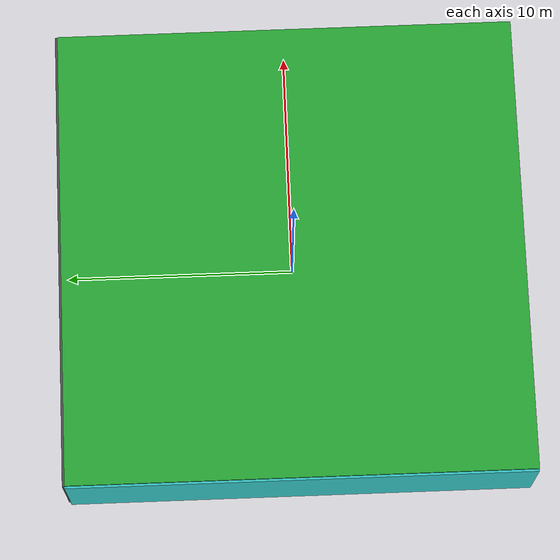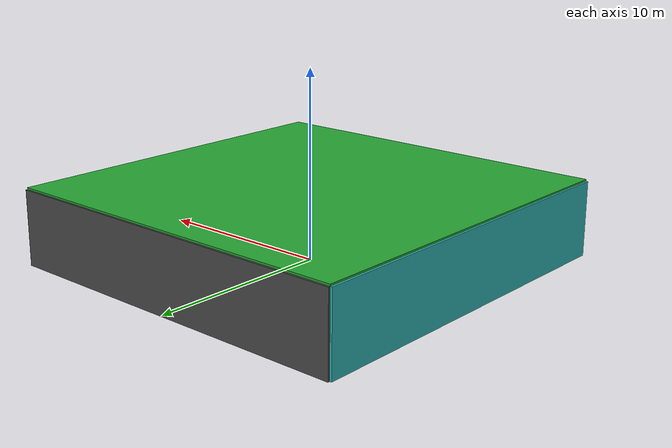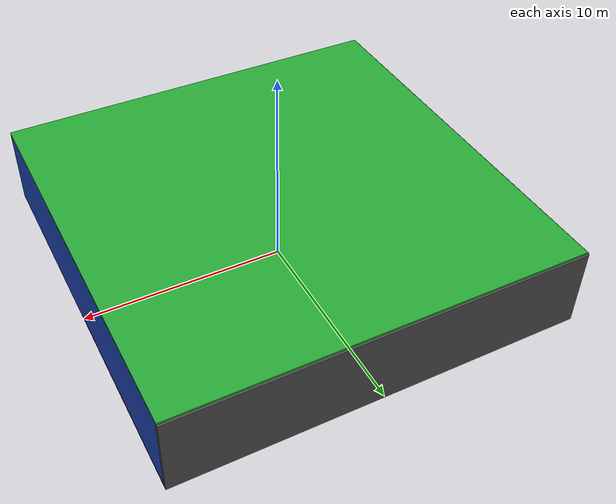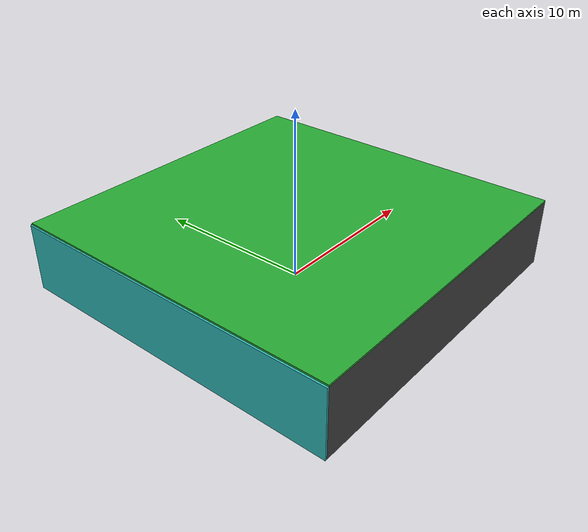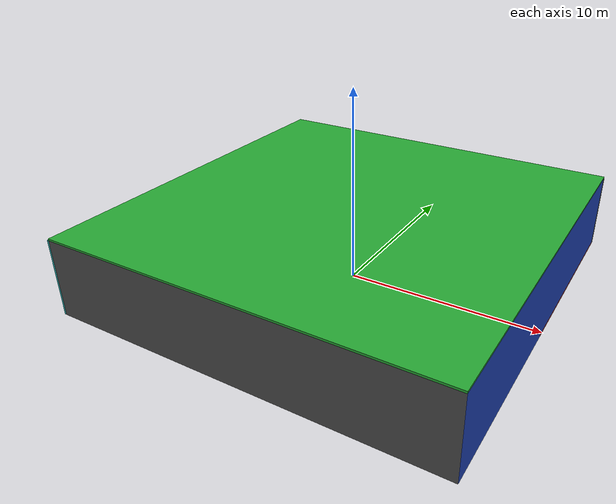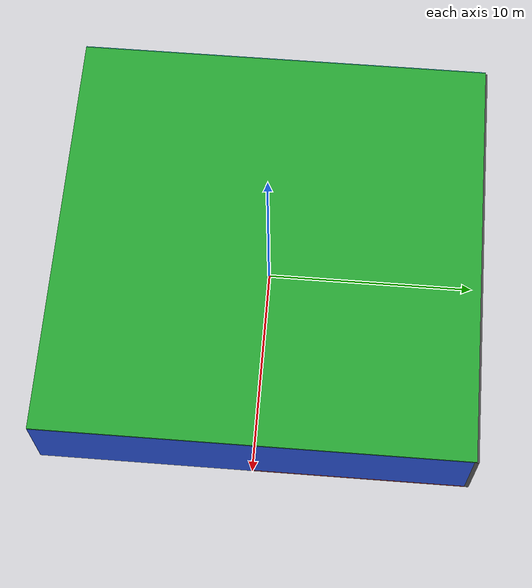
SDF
<sdf version="1.4">
 <world name="default">
  <physics type="ode">
   <max_step_size>0.001</max_step_size>
   <real_time_factor>1</real_time_factor>
   <real_time_update_rate>1000</real_time_update_rate>
   <gravity>0 0 -9.8</gravity>
  </physics>
  <scene><ambient>0.4 0.4 0.4 1</ambient><background>0.7 0.7 0.7 1</background><shadows>1</shadows></scene>
  <model name="Surrounding">
   <static>1</static>
   <link name="Ceiling">
    <collision name="Ceiling_Collision"><geometry><box><size>20 20 0.1</size></box></geometry></collision>
    <visual name="Ceiling_Visual">
     <geometry><box><size>20 20 0.1</size></box></geometry>
     <material>
      <script><uri>file://media/materials/scripts/gazebo.material</uri><name>Gazebo/Green</name></script>
     </material>
    </visual>
    <pose>0 0 4.05 0 0 0</pose>
   </link>
   <link name="Wall_South">
    <collision name="Wall_South_Collision">
     <geometry><box><size>20 0 4</size></box></geometry>
     <pose>0 0 2 0 -0 0</pose>
    </collision>
    <visual name="Wall_South_Visual">
     <pose>0 0 2 0 -0 0</pose>
     <geometry><box><size>20 0 4</size></box></geometry>
     <material>
      <script><uri>file://media/materials/scripts/gazebo.material</uri><name>Gazebo/Road</name></script>
     </material>
    </visual>
    <velocity_decay><linear>0</linear><angular>0</angular></velocity_decay>
    <pose>0 -10 0 0 -0 0</pose>
   </link>
   <link name="Wall_East">
    <collision name="Wall_21_Collision">
     <geometry><box><size>20 0 4</size></box></geometry>
     <pose>0 0 2 0 -0 0</pose>
    </collision>
    <visual name="Wall_21_Visual">
     <pose>0 0 2 0 -0 0</pose>
     <geometry><box><size>20 0 4</size></box></geometry>
     <material>
      <script><uri>file://media/materials/scripts/gazebo.material</uri><name>Gazebo/BlueGlow</name></script>
     </material>
    </visual>
    <velocity_decay><linear>0</linear><angular>0</angular></velocity_decay>
    <pose>10 0 0 0 -0 1.5708</pose>
   </link>
   <link name="Wall_North">
    <collision name="Wall_22_Collision">
     <geometry><box><size>20 0.2 4</size></box></geometry>
     <pose>0 0 2 0 -0 0</pose>
    </collision>
    <visual name="Wall_22_Visual">
     <pose>0 0 2 0 -0 0</pose>
     <geometry><box><size>20 0.2 4</size></box></geometry>
     <material>
      <script><uri>file://media/materials/scripts/gazebo.material</uri><name>Gazebo/Road</name></script>
     </material>
    </visual>
    <velocity_decay><linear>0</linear><angular>0</angular></velocity_decay>
    <pose>0 10 0 0 -0 0</pose>
   </link>
   <link name="Wall_West">
    <collision name="Wall_23_Collision">
     <geometry><box><size>20 0.2 4</size></box></geometry>
     <pose>0 0 2 0 -0 0</pose>
    </collision>
    <visual name="Wall_23_Visual">
     <pose>0 0 2 0 -0 0</pose>
     <geometry><box><size>20 0.2 4</size></box></geometry>
     <material>
      <script><uri>file://media/materials/scripts/gazebo.material</uri><name>Gazebo/Turquoise</name></script>
     </material>
    </visual>
    <velocity_decay><linear>0</linear><angular>0</angular></velocity_decay>
    <pose>-10 0 0 0 0 -1.5708</pose>
   </link>
   <link name="Ground_link">
    <collision name="collision">
     <pose>0 0 .05 0 -0 0</pose>
     <geometry><box><size>20 20 0.1</size></box></geometry>
    </collision>
    <visual name="visual">
     <pose>0 0 .05 0 -0 0</pose>
     <geometry><box><size>20 20 0.1</size></box></geometry>
     <material>
      <script><uri>file://media/materials/scripts/gazebo.material</uri><name>Gazebo/RedGlow</name></script>
     </material>
    </visual>
   </link>
   <static>1</static>
  </model>
  <spherical_coordinates>
   <surface_model>EARTH_WGS84</surface_model>
   <latitude_deg>0</latitude_deg>
   <longitude_deg>0</longitude_deg>
   <elevation>0</elevation>
   <heading_deg>0</heading_deg>
  </spherical_coordinates>
  <light name="lightball_0" type="diffuse">
   <diffuse>0.8 0.8 0.8 1</diffuse>
   <specular>0.2 0.2 0.2 1</specular>
   <attenuation>
    <range>100</range>
    <constant>0.7</constant>
    <linear>0.01</linear>
    <quadratic>0.001</quadratic>
   </attenuation>
   <direction>-0.5 0.1 -0.9</direction>
   <pose>-1.76778964395 -2.11867338882 3.62539254745 0 0 0</pose>
  </light>
  <light name="lightball_1" type="diffuse">
   <diffuse>0.8 0.8 0.8 1</diffuse>
   <specular>0.2 0.2 0.2 1</specular>
   <attenuation>
    <range>100</range>
    <constant>0.7</constant>
    <linear>0.01</linear>
    <quadratic>0.001</quadratic>
   </attenuation>
   <direction>-0.5 0.1 -0.9</direction>
   <pose>-1.13019996039 -8.11459433249 1.0115950858 0 0 0</pose>
  </light>
  <light name="lightball_2" type="diffuse">
   <diffuse>0.8 0.8 0.8 1</diffuse>
   <specular>0.2 0.2 0.2 1</specular>
   <attenuation>
    <range>100</range>
    <constant>0.7</constant>
    <linear>0.01</linear>
    <quadratic>0.001</quadratic>
   </attenuation>
   <direction>-0.5 0.1 -0.9</direction>
   <pose>1.09092730737 -3.82649897932 1.8907854477 0 0 0</pose>
  </light>
  <light name="lightball_3" type="diffuse">
   <diffuse>0.8 0.8 0.8 1</diffuse>
   <specular>0.2 0.2 0.2 1</specular>
   <attenuation>
    <range>100</range>
    <constant>0.7</constant>
    <linear>0.01</linear>
    <quadratic>0.001</quadratic>
   </attenuation>
   <direction>-0.5 0.1 -0.9</direction>
   <pose>-2.53705586453 -6.06411592707 2.41516283651 0 0 0</pose>
  </light>
  <light name="lightball_4" type="diffuse">
   <diffuse>0.8 0.8 0.8 1</diffuse>
   <specular>0.2 0.2 0.2 1</specular>
   <attenuation>
    <range>100</range>
    <constant>0.7</constant>
    <linear>0.01</linear>
    <quadratic>0.001</quadratic>
   </attenuation>
   <direction>-0.5 0.1 -0.9</direction>
   <pose>0.658565692168 -2.02681514788 2.09726927577 0 0 0</pose>
  </light>
  <light name="lightball_5" type="diffuse">
   <diffuse>0.8 0.8 0.8 1</diffuse>
   <specular>0.2 0.2 0.2 1</specular>
   <attenuation>
    <range>100</range>
    <constant>0.7</constant>
    <linear>0.01</linear>
    <quadratic>0.001</quadratic>
   </attenuation>
   <direction>-0.5 0.1 -0.9</direction>
   <pose>6.44813156159 -7.97494455245 1.96570706159 0 0 0</pose>
  </light>
  <light name="lightball_6" type="diffuse">
   <diffuse>0.8 0.8 0.8 1</diffuse>
   <specular>0.2 0.2 0.2 1</specular>
   <attenuation>
    <range>100</range>
    <constant>0.7</constant>
    <linear>0.01</linear>
    <quadratic>0.001</quadratic>
   </attenuation>
   <direction>-0.5 0.1 -0.9</direction>
   <pose>4.77680732443 -0.817056314298 2.96179422044 0 0 0</pose>
  </light>
  <light name="lightball_7" type="diffuse">
   <diffuse>0.8 0.8 0.8 1</diffuse>
   <specular>0.2 0.2 0.2 1</specular>
   <attenuation>
    <range>100</range>
    <constant>0.7</constant>
    <linear>0.01</linear>
    <quadratic>0.001</quadratic>
   </attenuation>
   <direction>-0.5 0.1 -0.9</direction>
   <pose>-4.77496990226 -0.348591143052 2.73042019419 0 0 0</pose>
  </light>
  <light name="lightball_8" type="diffuse">
   <diffuse>0.8 0.8 0.8 1</diffuse>
   <specular>0.2 0.2 0.2 1</specular>
   <attenuation>
    <range>100</range>
    <constant>0.7</constant>
    <linear>0.01</linear>
    <quadratic>0.001</quadratic>
   </attenuation>
   <direction>-0.5 0.1 -0.9</direction>
   <pose>-9.19135308437 0.333448405173 2.63727918308 0 0 0</pose>
  </light>
  <light name="lightball_9" type="diffuse">
   <diffuse>0.8 0.8 0.8 1</diffuse>
   <specular>0.2 0.2 0.2 1</specular>
   <attenuation>
    <range>100</range>
    <constant>0.7</constant>
    <linear>0.01</linear>
    <quadratic>0.001</quadratic>
   </attenuation>
   <direction>-0.5 0.1 -0.9</direction>
   <pose>9.74464103887 -6.86315219998 3.49679420707 0 0 0</pose>
  </light>
  <light name="lightball_10" type="diffuse">
   <diffuse>0.8 0.8 0.8 1</diffuse>
   <specular>0.2 0.2 0.2 1</specular>
   <attenuation>
    <range>100</range>
    <constant>0.7</constant>
    <linear>0.01</linear>
    <quadratic>0.001</quadratic>
   </attenuation>
   <direction>-0.5 0.1 -0.9</direction>
   <pose>9.48293077811 6.6654038343 1.32738881726 0 0 0</pose>
  </light>
  <light name="lightball_11" type="diffuse">
   <diffuse>0.8 0.8 0.8 1</diffuse>
   <specular>0.2 0.2 0.2 1</specular>
   <attenuation>
    <range>100</range>
    <constant>0.7</constant>
    <linear>0.01</linear>
    <quadratic>0.001</quadratic>
   </attenuation>
   <direction>-0.5 0.1 -0.9</direction>
   <pose>-1.13472509988 9.79836193432 0.867549295476 0 0 0</pose>
  </light>
  <light name="lightball_12" type="diffuse">
   <diffuse>0.8 0.8 0.8 1</diffuse>
   <specular>0.2 0.2 0.2 1</specular>
   <attenuation>
    <range>100</range>
    <constant>0.7</constant>
    <linear>0.01</linear>
    <quadratic>0.001</quadratic>
   </attenuation>
   <direction>-0.5 0.1 -0.9</direction>
   <pose>1.44107578147 -6.57750413364 3.42267862005 0 0 0</pose>
  </light>
  <include>
   <uri>model://robocup_3Dsim_goal</uri>
   <pose>-7.83079908818 1.31871870544 0 0 0 0.764286694628</pose>
  </include>
  <include><uri>model://cabinet</uri><pose>-1.37600037099 0.990897110594 0 0 0 2.38785084972</pose></include>
  <include><uri>model://cabinet</uri><pose>1.42127904625 1.29501056105 0 0 0 0.245277541026</pose></include>
  <include>
   <uri>model://textured_shapes</uri>
   <pose>5.22103648455 -8.09091562939 0 0 0 1.71319283795</pose>
  </include>
  <include>
   <uri>model://robocup_3Dsim_goal</uri>
   <pose>4.7747094549 -5.01190493358 0 0 0 1.49906559352</pose>
  </include>
  <include><uri>model://table</uri><pose>3.9229871841 1.57004776322 0 0 0 0.804436705128</pose></include>
 </world>
</sdf>

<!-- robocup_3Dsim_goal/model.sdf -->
<sdf version="1.5">
  <model name="robocup_3d_goal">
    <static>true</static>
    <link name="left_post">
      <pose>0 1.05 0.45 0 0 0</pose>
      <collision name="collision">
        <geometry>
          <cylinder>
            <radius>0.05</radius>
            <length>0.9</length>
          </cylinder>
        </geometry>
      </collision>
      <visual name="visual">
        <geometry>
          <cylinder>
            <radius>0.05</radius>
            <length>0.9</length>
          </cylinder>
        </geometry>
        <material>
          <script>
            <uri>file://media/materials/scripts/gazebo.material</uri>
            <name>Gazebo/ZincYellow</name>
          </script>
        </material>
      </visual>
    </link>
    <link name="left_support_horiz_lower">
      <pose>0.30 1.05 0.01 0 0 0</pose>
      <collision name="collision">
        <geometry>
          <box>
            <size>0.50 0.02 0.02</size>
          </box>
        </geometry>
      </collision>
      <visual name="visual">
        <geometry>
          <box>
            <size>0.50 0.02 0.02</size>
          </box>
        </geometry>
        <material>
          <script>
            <uri>file://media/materials/scripts/gazebo.material</uri>
            <name>Gazebo/White</name>
          </script>
        </material>
      </visual>
    </link>
    <link name="left_support_horiz_upper">
      <pose>0.30 1.05 0.79 0 0 0</pose>
      <collision name="collision">
        <geometry>
          <box>
            <size>0.50 0.02 0.02</size>
          </box>
        </geometry>
      </collision>
      <visual name="visual">
        <geometry>
          <box>
            <size>0.50 0.02 0.02</size>
          </box>
        </geometry>
        <material>
          <script>
            <uri>file://media/materials/scripts/gazebo.material</uri>
            <name>Gazebo/White</name>
          </script>
        </material>
      </visual>
    </link>
    <link name="left_support_vertical">
      <pose>0.56 1.05 0.4 0 1.5708 0</pose>
      <collision name="collision">
        <geometry>
          <box>
            <size>0.80 0.02 0.02</size>
          </box>
        </geometry>
      </collision>
      <visual name="visual">
        <geometry>
          <box>
            <size>0.80 0.02 0.02</size>
          </box>
        </geometry>
        <material>
          <script>
            <uri>file://media/materials/scripts/gazebo.material</uri>
            <name>Gazebo/White</name>
          </script>
        </material>
      </visual>
    </link>
    <link name="right_support_horiz_lower">
      <pose>0.30 -1.05 0.01 0 0 0</pose>
      <collision name="collision">
        <geometry>
          <box>
            <size>0.50 0.02 0.02</size>
          </box>
        </geometry>
      </collision>
      <visual name="visual">
        <geometry>
          <box>
            <size>0.50 0.02 0.02</size>
          </box>
        </geometry>
        <material>
          <script>
            <uri>file://media/materials/scripts/gazebo.material</uri>
            <name>Gazebo/White</name>
          </script>
        </material>
      </visual>
    </link>
    <link name="right_support_horiz_upper">
      <pose>0.30 -1.05 0.79 0 0 0</pose>
      <collision name="collision">
        <geometry>
          <box>
            <size>0.50 0.02 0.02</size>
          </box>
        </geometry>
      </collision>
      <visual name="visual">
        <geometry>
          <box>
            <size>0.50 0.02 0.02</size>
          </box>
        </geometry>
        <material>
          <script>
            <uri>file://media/materials/scripts/gazebo.material</uri>
            <name>Gazebo/White</name>
          </script>
        </material>
      </visual>
    </link>
    <link name="right_support_vertical">
      <pose>0.56 -1.05 0.4 0 1.5708 0</pose>
      <collision name="collision">
        <geometry>
          <box>
            <size>0.80 0.02 0.02</size>
          </box>
        </geometry>
      </collision>
      <visual name="visual">
        <geometry>
          <box>
            <size>0.80 0.02 0.02</size>
          </box>
        </geometry>
        <material>
          <script>
            <uri>file://media/materials/scripts/gazebo.material</uri>
            <name>Gazebo/White</name>
          </script>
        </material>
      </visual>
    </link>
    <link name="center_support_horiz_lower">
      <pose>0.56 0 0.01 0 1.5708 0</pose>
      <collision name="collision">
        <geometry>
          <box>
            <size>0.02 2.08 0.02</size>
          </box>
        </geometry>
      </collision>
      <visual name="visual">
        <geometry>
          <box>
            <size>0.02 2.08 0.02</size>
          </box>
        </geometry>
        <material>
          <script>
            <uri>file://media/materials/scripts/gazebo.material</uri>
            <name>Gazebo/White</name>
          </script>
        </material>
      </visual>
    </link>
    <link name="center_support_horiz_upper">
      <pose>0.56 0 0.79 0 1.5708 0</pose>
      <collision name="collision">
        <geometry>
          <box>
            <size>0.02 2.08 0.02</size>
          </box>
        </geometry>
      </collision>
      <visual name="visual">
        <geometry>
          <box>
            <size>0.02 2.08 0.02</size>
          </box>
        </geometry>
        <material>
          <script>
            <uri>file://media/materials/scripts/gazebo.material</uri>
            <name>Gazebo/White</name>
          </script>
        </material>
      </visual>
    </link>
    <link name="right_post">
      <pose>0 -1.05 0.45 0 0 0</pose>
      <collision name="collision">
        <geometry>
          <cylinder>
            <radius>0.05</radius>
            <length>0.9</length>
          </cylinder>
        </geometry>
      </collision>
      <visual name="visual">
        <geometry>
          <cylinder>
            <radius>0.05</radius>
            <length>0.9</length>
          </cylinder>
        </geometry>
        <material>
          <script>
            <uri>file://media/materials/scripts/gazebo.material</uri>
            <name>Gazebo/ZincYellow</name>
          </script>
        </material>
      </visual>
    </link>
    <link name="crossbar">
      <pose>0 0 0.85 1.57 1.57 0</pose>
      <collision name="collision">
        <geometry>
          <cylinder>
            <radius>0.05</radius>
            <length>2.0</length>
          </cylinder>
        </geometry>
      </collision>
      <visual name="visual">
        <geometry>
          <cylinder>
            <radius>0.05</radius>
            <length>2.0</length>
          </cylinder>
        </geometry>
        <material>
          <script>
            <uri>file://media/materials/scripts/gazebo.material</uri>
            <name>Gazebo/ZincYellow</name>
          </script>
        </material>
      </visual>
    </link>
    <link name="center_net">
      <pose>0.56 0 0.40 0 0 0</pose>
      <collision name="collision">
        <geometry>
          <box>
            <size>0.01 2.1 0.80</size>
          </box>
        </geometry>
      </collision>
      <visual name="visual">
        <geometry>
          <box>
            <size>0.01 2.1 0.80</size>
          </box>
        </geometry>
        <material>
          <script>
            <uri>model://../model_source/models/robocup09_spl_field/materials/scripts/</uri>
            <uri>model://../model_source/models/robocup09_spl_field/materials/textures/</uri>
            <name>RoboCup/Net</name>
          </script>
        </material>
      </visual>
    </link>
    <link name="left_net">
      <pose>0.30 1.05 0.40 0 0 0</pose>
      <collision name="collision">
        <geometry>
          <box>
            <size>0.50 0.01 0.76</size>
          </box>
        </geometry>
      </collision>
      <visual name="visual">
        <geometry>
          <box>
            <size>0.50 0.01 0.76</size>
          </box>
        </geometry>
        <material>
          <script>
            <uri>model://../model_source/models/robocup09_spl_field/materials/scripts/</uri>
            <uri>model://../model_source/models/robocup09_spl_field/materials/textures/</uri>
            <name>RoboCup/Net</name>
          </script>
        </material>
      </visual>
    </link>
    <link name="right_net">
      <pose>0.30 -1.05 0.40 0 0 0</pose>
      <collision name="collision">
        <geometry>
          <box>
            <size>0.50 0.01 0.76</size>
          </box>
        </geometry>
      </collision>
      <visual name="visual">
        <geometry>
          <box>
            <size>0.50 0.01 0.76</size>
          </box>
        </geometry>
        <material>
          <script>
            <uri>model://../model_source/models/robocup09_spl_field/materials/scripts/</uri>
            <uri>model://../model_source/models/robocup09_spl_field/materials/textures/</uri>
            <name>RoboCup/Net</name>
          </script>
        </material>
      </visual>
    </link>
  </model>
</sdf>

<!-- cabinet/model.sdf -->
<sdf version="1.5">
  <model name="cabinet">
    <static>true</static>
    <link name="cabinet_bottom_plate">
      <inertial>
        <pose>0 0 -1 0 0 0</pose>
        <inertia>
          <ixx>2.050000</ixx>
          <ixy>0</ixy>
          <ixz>0</ixz>
          <iyy>2.050000</iyy>
          <iyz>0</iyz>
          <izz>2.050000</izz>
        </inertia>
        <mass>25.000000</mass>
      </inertial>
      <collision name="cabinet_bottom_plate_geom">
        <pose>0 0 0.010000 0 0 0</pose>
        <geometry>
          <box>
            <size>0.450000 0.450000 0.020000</size>
          </box>
        </geometry>
      </collision>
      <visual name="cabinet_bottom_plate_geom_visual">
        <pose>0 0 0.010000 0 0 0</pose>
        <geometry>
          <box>
            <size>0.450000 0.450000 0.020000</size>
          </box>
        </geometry>
        <material>
          <script>
            <uri>model://media/materials/scripts/gazebo.material</uri>
            <name>Gazebo/Wood</name>
          </script>
        </material>
      </visual>
      <collision name="cabinet_bottom_plate_geom_cabinet_back_plate">
        <pose>0.235000 0 0.510000 0 0 0</pose>
        <geometry>
          <box>
            <size>0.020000 0.450000 1.020000</size>
          </box>
        </geometry>
      </collision>
      <visual name="cabinet_bottom_plate_geom_cabinet_back_plate_visual">
        <pose>0.235000 0 0.510000 0 0 0</pose>
        <geometry>
          <box>
            <size>0.020000 0.450000 1.020000</size>
          </box>
        </geometry>
        <material>
          <script>
            <uri>model://media/materials/scripts/gazebo.material</uri>
            <name>Gazebo/Wood</name>
          </script>
        </material>
      </visual>
      <collision name="cabinet_bottom_plate_geom_cabinet_left_plate">
        <pose>0 0.235000 0.510000 0 0 0</pose>
        <geometry>
          <box>
            <size>0.450000 0.020000 1.020000</size>
          </box>
        </geometry>
      </collision>
      <visual name="cabinet_bottom_plate_geom_cabinet_left_plate_visual">
        <pose>0 0.235000 0.510000 0 0 0</pose>
        <geometry>
          <box>
            <size>0.450000 0.020000 1.020000</size>
          </box>
        </geometry>
        <material>
          <script>
            <uri>model://media/materials/scripts/gazebo.material</uri>
            <name>Gazebo/Wood</name>
          </script>
        </material>
      </visual>
      <collision name="cabinet_bottom_plate_geom_cabinet_middle_plate">
        <pose>0 0 0.510000 0 0 0</pose>
        <geometry>
          <box>
            <size>0.450000 0.450000 0.020000</size>
          </box>
        </geometry>
      </collision>
      <visual name="cabinet_bottom_plate_geom_cabinet_middle_plate_visual">
        <pose>0 0 0.510000 0 0 0</pose>
        <geometry>
          <box>
            <size>0.450000 0.450000 0.020000</size>
          </box>
        </geometry>
        <material>
          <script>
            <uri>model://media/materials/scripts/gazebo.material</uri>
            <name>Gazebo/Wood</name>
          </script>
        </material>
      </visual>
      <collision name="cabinet_bottom_plate_geom_cabinet_right_plate">
        <pose>0 -0.235000 0.510000 0 0 0</pose>
        <geometry>
          <box>
            <size>0.450000 0.020000 1.020000</size>
          </box>
        </geometry>
      </collision>
      <visual name="cabinet_bottom_plate_geom_cabinet_right_plate_visual">
        <pose>0 -0.235000 0.510000 0 0 0</pose>
        <geometry>
          <box>
            <size>0.450000 0.020000 1.020000</size>
          </box>
        </geometry>
        <material>
          <script>
            <uri>model://media/materials/scripts/gazebo.material</uri>
            <name>Gazebo/Wood</name>
          </script>
        </material>
      </visual>
      <collision name="cabinet_bottom_plate_geom_cabinet_top_plate">
        <pose>0 0 1.010000 0 0 0</pose>
        <geometry>
          <box>
            <size>0.450000 0.450000 0.020000</size>
          </box>
        </geometry>
      </collision>
      <visual name="cabinet_bottom_plate_geom_cabinet_top_plate_visual">
        <pose>0 0 1.010000 0 0 0</pose>
        <geometry>
          <box>
            <size>0.450000 0.450000 0.020000</size>
          </box>
        </geometry>
        <material>
          <script>
            <uri>model://media/materials/scripts/gazebo.material</uri>
            <name>Gazebo/Wood</name>
          </script>
        </material>
      </visual>
    </link>
  </model>
</sdf>

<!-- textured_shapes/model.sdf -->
<sdf version="1.6">
  <model name="textured_shapes">
    <pose>0 0 0.5 0 0 0</pose>
    <link name="box">
      <pose>0 -1.5 0 0 0 0</pose>
      <collision name="collision">
        <geometry>
          <box>
            <size>1 1 1</size>
          </box>
        </geometry>
      </collision>
      <visual name="visual">
        <geometry>
          <box>
            <size>1 1 1</size>
          </box>
        </geometry>
        <material>
          <script>
            <uri>model://../model_source/models/textured_shapes/materials/scripts</uri>
            <uri>model://../model_source/models/textured_shapes/materials/textures</uri>
            <name>TexturedShape/Squares</name>
          </script>
        </material>
      </visual>
    </link>
    <link name="sphere">
      <collision name="collision">
        <geometry>
          <sphere>
            <radius>0.5</radius>
          </sphere>
        </geometry>
      </collision>
      <visual name="visual">
        <geometry>
          <sphere>
            <radius>0.5</radius>
          </sphere>
        </geometry>
        <material>
          <script>
            <uri>model://../model_source/models/textured_shapes/materials/scripts</uri>
            <uri>model://../model_source/models/textured_shapes/materials/textures</uri>
            <name>TexturedShape/Squares</name>
          </script>
        </material>
      </visual>
    </link>
    <link name="cylinder">
      <pose>0 1.5 0 0 0 0</pose>
      <collision name="collision">
        <geometry>
          <cylinder>
            <radius>0.5</radius>
            <length>1</length>
          </cylinder>
        </geometry>
      </collision>
      <visual name="visual">
        <geometry>
          <cylinder>
            <radius>0.5</radius>
            <length>1</length>
          </cylinder>
        </geometry>
        <material>
          <script>
            <uri>model://../model_source/models/textured_shapes/materials/scripts</uri>
            <uri>model://../model_source/models/textured_shapes/materials/textures</uri>
            <name>TexturedShape/Squares</name>
          </script>
        </material>
      </visual>
    </link>
  </model>
</sdf>

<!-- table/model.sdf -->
<sdf version="1.5">
  <model name="table">
    <static>true</static>
    <link name="link">
      <collision name="surface">
        <pose>0 0 1.0 0 0 0</pose>
        <geometry>
          <box>
            <size>1.5 0.8 0.03</size>
          </box>
        </geometry>
        <surface>
          <friction>
            <ode>
              <mu>0.6</mu>
              <mu2>0.6</mu2>
            </ode>
          </friction>
        </surface>
      </collision>
      <visual name="visual1">
        <pose>0 0 1.0 0 0 0</pose>
        <geometry>
          <box>
            <size>1.5 0.8 0.03</size>
          </box>
        </geometry>
        <material>
          <script>
            <uri>model://media/materials/scripts/gazebo.material</uri>
            <name>Gazebo/Wood</name>
          </script>
        </material>
      </visual>
      <collision name="front_left_leg">
        <pose>0.68 0.38 0.5 0 0 0</pose>
        <geometry>
          <cylinder>
            <radius>0.02</radius>
            <length>1.0</length>
          </cylinder>
        </geometry>
      </collision>
      <visual name="front_left_leg">
        <pose>0.68 0.38 0.5 0 0 0</pose>
        <geometry>
          <cylinder>
            <radius>0.02</radius>
            <length>1.0</length>
          </cylinder>
        </geometry>
        <material>
          <script>
            <uri>model://media/materials/scripts/gazebo.material</uri>
            <name>Gazebo/Grey</name>
          </script>
        </material>
      </visual>
      <collision name="front_right_leg">
        <pose>0.68 -0.38 0.5 0 0 0</pose>
        <geometry>
          <cylinder>
            <radius>0.02</radius>
            <length>1.0</length>
          </cylinder>
        </geometry>
      </collision>
      <visual name="front_right_leg">
        <pose>0.68 -0.38 0.5 0 0 0</pose>
        <geometry>
          <cylinder>
            <radius>0.02</radius>
            <length>1.0</length>
          </cylinder>
        </geometry>
        <material>
          <script>
            <uri>model://media/materials/scripts/gazebo.material</uri>
            <name>Gazebo/Grey</name>
          </script>
        </material>
      </visual>
      <collision name="back_right_leg">
        <pose>-0.68 -0.38 0.5 0 0 0</pose>
        <geometry>
          <cylinder>
            <radius>0.02</radius>
            <length>1.0</length>
          </cylinder>
        </geometry>
      </collision>
      <visual name="back_right_leg">
        <pose>-0.68 -0.38 0.5 0 0 0</pose>
        <geometry>
          <cylinder>
            <radius>0.02</radius>
            <length>1.0</length>
          </cylinder>
        </geometry>
        <material>
          <script>
            <uri>model://media/materials/scripts/gazebo.material</uri>
            <name>Gazebo/Grey</name>
          </script>
        </material>
      </visual>
      <collision name="back_left_leg">
        <pose>-0.68 0.38 0.5 0 0 0</pose>
        <geometry>
          <cylinder>
            <radius>0.02</radius>
            <length>1.0</length>
          </cylinder>
        </geometry>
      </collision>
      <visual name="back_left_leg">
        <pose>-0.68 0.38 0.5 0 0 0</pose>
        <geometry>
          <cylinder>
            <radius>0.02</radius>
            <length>1.0</length>
          </cylinder>
        </geometry>
        <material>
          <script>
            <uri>model://media/materials/scripts/gazebo.material</uri>
            <name>Gazebo/Grey</name>
          </script>
        </material>
      </visual>
    </link>
  </model>
</sdf>
